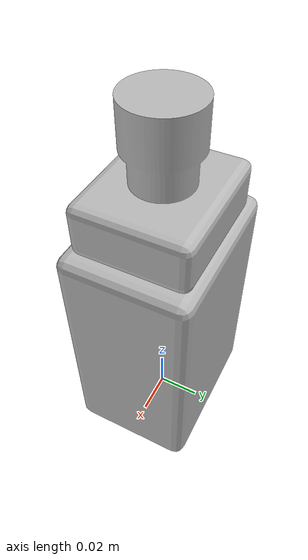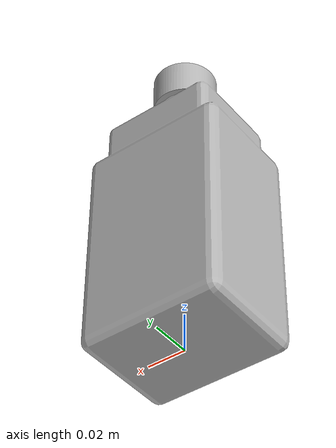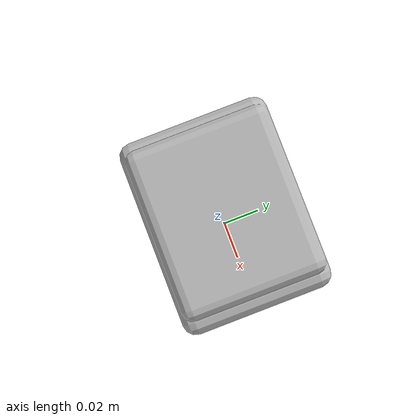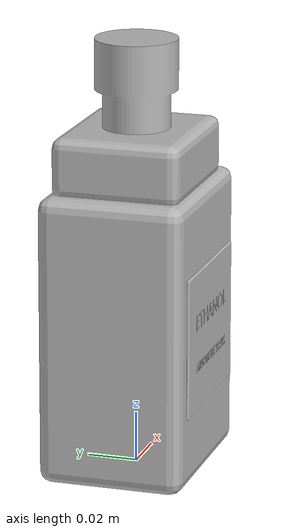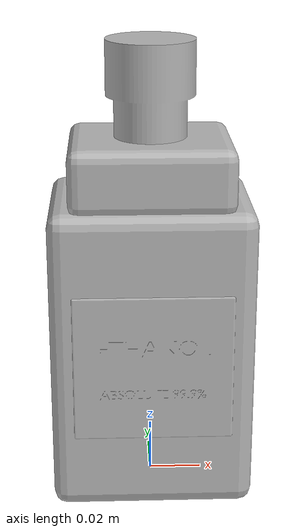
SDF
<?xml version="1.0"?>
<sdf version="1.10">
  <model name="reagent_bottle_ethanol">
    <static>false</static>
    <link name="base_link">
      <inertial>
        <pose>0.000000 0.000000 0.086000 0 0 0</pose>
        <mass>0.5500</mass>
        <inertia>
          <ixx>0.00151012</ixx><ixy>0</ixy><ixz>0</ixz>
          <iyy>0.00161375</iyy><iyz>0</iyz>
          <izz>0.00041200</izz>
        </inertia>
      </inertial>
      <collision name="collision">
        <pose>0.000000 0.000000 0.086000 0 0 0</pose>
        <geometry>
          <box><size>0.075000 0.058000 0.172000</size></box>
        </geometry>
        <surface>
          <friction><ode><mu>0.9</mu><mu2>0.9</mu2></ode></friction>
        </surface>
      </collision>
      <visual name="visual">
        <geometry>
          <mesh><uri>model://reagent_bottle_ethanol/meshes/reagent_bottle_ethanol.obj</uri></mesh>
        </geometry>
      </visual>
    </link>
  </model>
</sdf>
